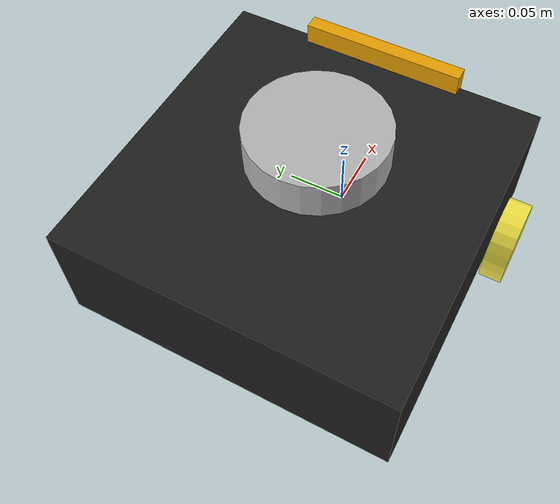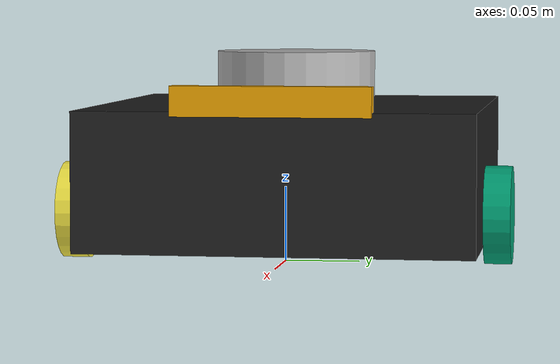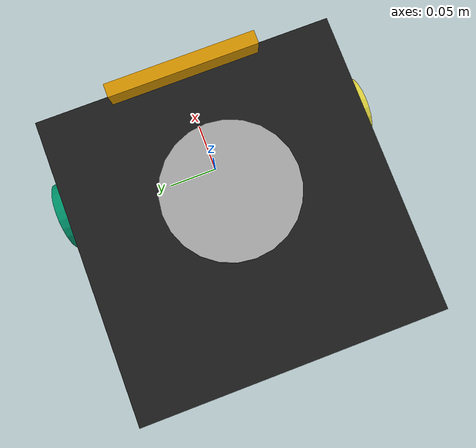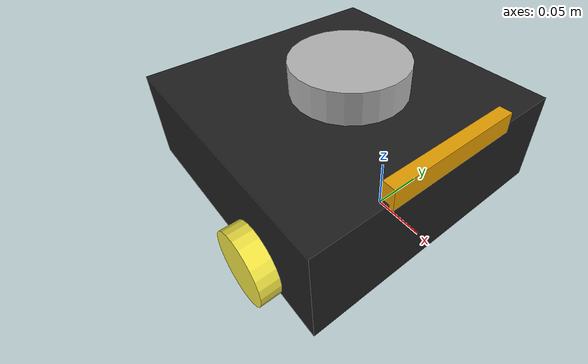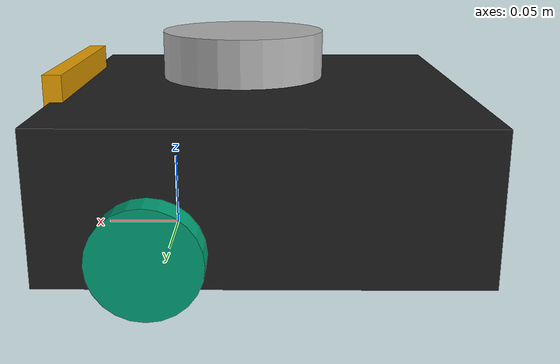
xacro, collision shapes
<?xml version="1.0" ?>
<robot name="turtlebot3_waffle" xmlns:xacro="http://ros.org/wiki/xacro">
  <xacro:include filename="$(find turtlebot3_description)/urdf/common_properties.xacro"/>
  <xacro:include filename="$(find turtlebot3_description)/urdf/turtlebot3_waffle.gazebo.xacro"/>

  <xacro:property name="r200_cam_rgb_px" value="0.005"/>
  <xacro:property name="r200_cam_rgb_py" value="0.018"/>
  <xacro:property name="r200_cam_rgb_pz" value="0.013"/>
  <xacro:property name="r200_cam_depth_offset" value="0.01"/>

  <link name="base_footprint"/>

  <joint name="base_joint" type="fixed">
    <parent link="base_footprint"/>
    <child link="base_link" />
    <origin xyz="0 0 0.010" rpy="0 0 0"/>
  </joint>

  <link name="base_link">
    <visual>
      <origin xyz="-0.064 0 0.0" rpy="0 0 0"/>
      <geometry>
        <mesh filename="package://turtlebot3_description/meshes/bases/waffle_base.stl" scale="0.001 0.001 0.001"/>
      </geometry>
      <material name="light_black"/>
    </visual>

    <collision>
      <origin xyz="-0.064 0 0.047" rpy="0 0 0"/>
      <geometry>
        <box size="0.266 0.266 0.094"/>
      </geometry>
    </collision>

    <inertial>
      <origin xyz="0 0 0" rpy="0 0 0"/>
      <mass value="1.3729096e+00"/>
      <inertia ixx="8.7002718e-03" ixy="-4.7576583e-05" ixz="1.1160499e-04"
               iyy="8.6195418e-03" iyz="-3.5422299e-06"
               izz="1.4612727e-02" />
    </inertial>
  </link>

  <joint name="wheel_left_joint" type="continuous">
    <parent link="base_link"/>
    <child link="wheel_left_link"/>
    <origin xyz="0.0 0.144 0.023" rpy="-1.57 0 0"/>
    <axis xyz="0 0 1"/>
  </joint>

  <link name="wheel_left_link">
    <visual>
      <origin xyz="0 0 0" rpy="1.57 0 0"/>
      <geometry>
        <mesh filename="package://turtlebot3_description/meshes/wheels/left_tire.stl" scale="0.001 0.001 0.001"/>
      </geometry>
      <material name="dark"/>
    </visual>

    <collision>
      <origin xyz="0 0 0" rpy="0 0 0"/>
      <geometry>
        <cylinder length="0.018" radius="0.033"/>
      </geometry>
    </collision>

    <inertial>
      <origin xyz="0 0 0" />
      <mass value="2.8498940e-02" />
      <inertia ixx="1.1175580e-05" ixy="-4.2369783e-11" ixz="-5.9381719e-09"
               iyy="1.1192413e-05" iyz="-1.4400107e-11"
               izz="2.0712558e-05" />
      </inertial>
  </link>

  <joint name="wheel_right_joint" type="continuous">
    <parent link="base_link"/>
    <child link="wheel_right_link"/>
    <origin xyz="0.0 -0.144 0.023" rpy="-1.57 0 0"/>
    <axis xyz="0 0 1"/>
  </joint>

  <link name="wheel_right_link">
    <visual>
      <origin xyz="0 0 0" rpy="1.57 0 0"/>
      <geometry>
        <mesh filename="package://turtlebot3_description/meshes/wheels/right_tire.stl" scale="0.001 0.001 0.001"/>
      </geometry>
      <material name="dark"/>
    </visual>

    <collision>
      <origin xyz="0 0 0" rpy="0 0 0"/>
      <geometry>
        <cylinder length="0.018" radius="0.033"/>
      </geometry>
    </collision>

    <inertial>
      <origin xyz="0 0 0" />
      <mass value="2.8498940e-02" />
      <inertia ixx="1.1175580e-05" ixy="-4.2369783e-11" ixz="-5.9381719e-09"
               iyy="1.1192413e-05" iyz="-1.4400107e-11"
               izz="2.0712558e-05" />
      </inertial>
  </link>

  <joint name="caster_back_right_joint" type="fixed">
    <parent link="base_link"/>
    <child link="caster_back_right_link"/>
    <origin xyz="-0.177 -0.064 -0.004" rpy="-1.57 0 0"/>
  </joint>

  <link name="caster_back_right_link">
    <collision>
      <origin xyz="0 0.001 0" rpy="0 0 0"/>
      <geometry>
        <box size="0.030 0.009 0.020"/>
      </geometry>
    </collision>

    <inertial>
      <origin xyz="0 0 0" />
      <mass value="0.005" />
      <inertia ixx="0.001" ixy="0.0" ixz="0.0"
               iyy="0.001" iyz="0.0"
               izz="0.001" />
    </inertial>
  </link>

  <joint name="caster_back_left_joint" type="fixed">
    <parent link="base_link"/>
    <child link="caster_back_left_link"/>
    <origin xyz="-0.177 0.064 -0.004" rpy="-1.57 0 0"/>
  </joint>

  <link name="caster_back_left_link">
    <collision>
      <origin xyz="0 0.001 0" rpy="0 0 0"/>
      <geometry>
        <box size="0.030 0.009 0.020"/>
      </geometry>
    </collision>

    <inertial>
      <origin xyz="0 0 0" />
      <mass value="0.005" />
      <inertia ixx="0.001" ixy="0.0" ixz="0.0"
               iyy="0.001" iyz="0.0"
               izz="0.001" />
    </inertial>
  </link>

  <joint name="imu_joint" type="fixed">
    <parent link="base_link"/>
    <child link="imu_link"/>
    <origin xyz="0.0 0 0.068" rpy="0 0 0"/>
  </joint>

  <link name="imu_link"/>

  <joint name="scan_joint" type="fixed">
    <parent link="base_link"/>
    <child link="base_scan"/>
    <origin xyz="-0.064 0 0.122" rpy="0 0 0"/>
  </joint>

  <link name="base_scan">
    <visual>
      <origin xyz="0 0 0" rpy="0 0 0"/>
      <geometry>
        <mesh filename="package://turtlebot3_description/meshes/sensors/lds.stl" scale="0.001 0.001 0.001"/>
      </geometry>
      <material name="dark"/>
    </visual>

    <collision>
      <origin xyz="0.015 0 -0.0065" rpy="0 0 0"/>
      <geometry>
        <cylinder length="0.0315" radius="0.055"/>
      </geometry>
    </collision>

    <inertial>
      <mass value="0.114" />
      <origin xyz="0 0 0" />
      <inertia ixx="0.001" ixy="0.0" ixz="0.0"
               iyy="0.001" iyz="0.0"
               izz="0.001" />
    </inertial>
  </link>

  <joint name="camera_joint" type="fixed">
    <origin xyz="0.064 -0.065 0.094" rpy="0 0 0"/>
    <parent link="base_link"/>
    <child link="camera_link"/>
  </joint>

  <link name="camera_link">
    <visual>
     <origin xyz="0 0 0" rpy="1.57 0 1.57"/>
      <geometry>
       <mesh filename="package://turtlebot3_description/meshes/sensors/r200.dae" />
      </geometry>
    </visual>
    <collision>
      <origin xyz="0.003 0.065 0.007" rpy="0 0 0"/>
      <geometry>
        <box size="0.012 0.132 0.020"/>
      </geometry>
    </collision>

    <!-- This inertial field needs doesn't contain reliable data!! -->
  </link>

  <joint name="camera_rgb_joint" type="fixed">
    <origin xyz="${r200_cam_rgb_px} ${r200_cam_rgb_py} ${r200_cam_rgb_pz}" rpy="0 0 0"/>
    <parent link="camera_link"/>
    <child link="camera_rgb_frame"/>
  </joint>
  <link name="camera_rgb_frame"/>

  <joint name="camera_rgb_optical_joint" type="fixed">
    <origin xyz="0 0 0" rpy="-1.57 0 -1.57"/>
    <parent link="camera_rgb_frame"/>
    <child link="camera_rgb_optical_frame"/>
  </joint>
  <link name="camera_rgb_optical_frame"/>

  <joint name="camera_depth_joint" type="fixed">
    <origin xyz="${r200_cam_rgb_px} ${r200_cam_rgb_py + r200_cam_depth_offset} ${r200_cam_rgb_pz}" rpy="0 0 0"/>
    <parent link="camera_link"/>
    <child link="camera_depth_frame"/>
  </joint>
  <link name="camera_depth_frame"/>

  <joint name="camera_depth_optical_joint" type="fixed">
    <origin xyz="0 0 0" rpy="-1.57 0 -1.57"/>
    <parent link="camera_depth_frame"/>
    <child link="camera_depth_optical_frame"/>
  </joint>
  <link name="camera_depth_optical_frame"/>

  <xacro:property name="height1" value="0.01" />
  <xacro:property name="width" value="0.01" />

  <joint name="fixed_gps" type="fixed">
    <parent link="base_link"/>
    <child link="sensor_gps"/>
  </joint>

 <!-- Base Link -->
  <link name="sensor_gps">
    <collision>
      <origin xyz="0 0 0.01" rpy="0 0 0"/>
      <geometry>
        <box size="${width} ${width} ${height1}"/>
      </geometry>
    </collision>

    <visual>
      <origin xyz="0 0 0.01" rpy="0 0 0"/>
      <geometry>
        <box size="${width} ${width} ${height1}"/>
      </geometry>
      <material name="orange"/>
    </visual>

    <inertial>
      <origin xyz="0 0 0" rpy="0 0 0"/>
      <mass value="1"/>
      <inertia
        ixx="0.0" ixy="0.0" ixz="0.0"
        iyy="0.0" iyz="0.0"
        izz="0.0"/>
    </inertial>
  </link>

  <gazebo>
            <plugin name="gps_plugin" filename="libhector_gazebo_ros_gps.so">
                <updateRate>4.0</updateRate>
                <alwaysOn>1</alwaysOn>
                <bodyName>base_footprint</bodyName>
                <topicName>/gps/fix</topicName>
                <updateRate>4.0</updateRate>
                <velocityTopicName>/gps/fix_velocity</velocityTopicName>
                <referenceHeading>90</referenceHeading>
                <referenceAltitude>10</referenceAltitude>
                <offset>0 0 0</offset>
                <drift>5.0 5.0 5.0</drift>
                <gaussianNoise>0.05 0.05 0.05</gaussianNoise>
                <velocityDrift>0.001 0.001 0.001</velocityDrift>
                <velocityGaussianNoise>0.5 0.5 0.5</velocityGaussianNoise>
            </plugin>
        </gazebo>

</robot>
